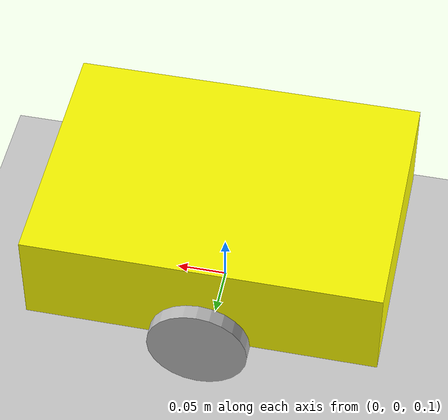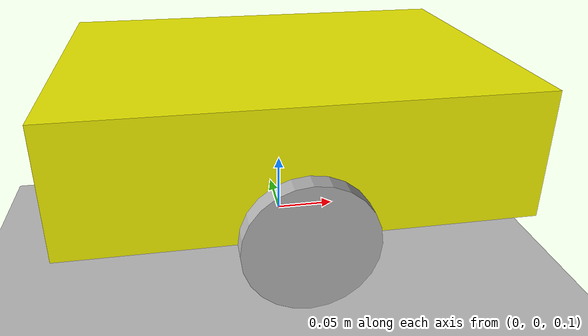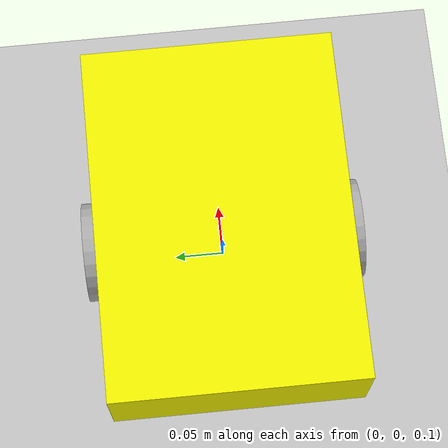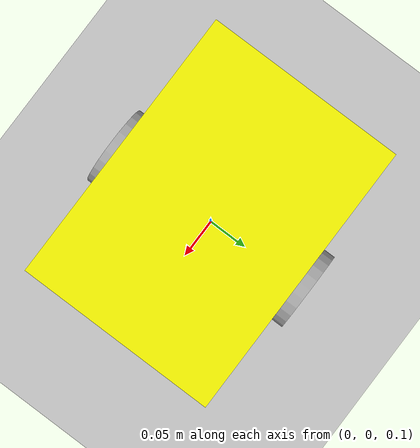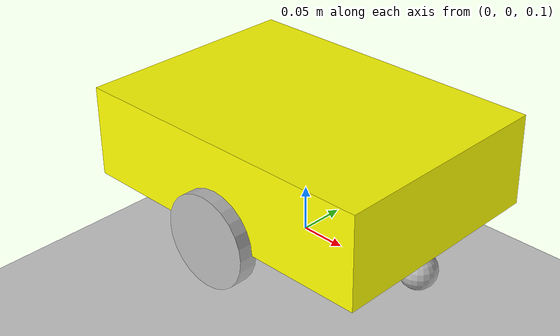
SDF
<?xml version="1.0" ?>
<sdf version="1.10">
  <world name="empty_world">
    <include>
      <uri>https://fuel.gazebosim.org/1.0/openrobotics/models/Ground Plane</uri>
    </include>
    <include>
      <uri>https://fuel.gazebosim.org/1.0/openrobotics/models/Sun</uri>
    </include>

    <include>
      <uri>model://diffbot</uri>
      <name>diffbot</name>
      <pose>0 0 0.1 0 0 0</pose>
    </include>
  </world>
</sdf>

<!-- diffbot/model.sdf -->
<sdf version="1.10">
  <model name="diffbot">
    <static>false</static>

    <!-- Pose inicial -->
    <pose>0 0 0 0 0 0</pose>

    <!-- Base -->
    <link name="base_link">
      <pose>0 0 0.10 0 0 0</pose>
      <inertial>
        <mass>5.0</mass>
        <inertia>
          <ixx>0.10</ixx><iyy>0.10</iyy><izz>0.10</izz>
          <ixy>0</ixy><ixz>0</ixz><iyz>0</iyz>
        </inertia>
      </inertial>

      <collision name="base_collision">
        <geometry>
          <box><size>0.35 0.25 0.10</size></box>
        </geometry>
      </collision>

      <visual name="base_visual">
        <geometry>
          <box><size>0.35 0.25 0.10</size></box>
        </geometry>
        <material>
          <ambient>1 1 0 1</ambient>
          <diffuse>1 1 0 1</diffuse>
        </material>
      </visual>
    </link>

    <!-- Roda esquerra -->
    <link name="left_wheel">
      <pose>0 0.13 0.05 1.57 0 0</pose>
      <inertial>
        <mass>0.5</mass>
        <inertia>
          <ixx>0.001</ixx><iyy>0.001</iyy><izz>0.001</izz>
          <ixy>0</ixy><ixz>0</ixz><iyz>0</iyz>
        </inertia>
      </inertial>
      <collision name="left_wheel_collision">
        <geometry>
          <cylinder><radius>0.05</radius><length>0.02</length></cylinder>
        </geometry>
        <!-- Fricció alta -->
        <surface>
          <friction>
            <ode>
              <mu>2.0</mu><mu2>2.0</mu2>
            </ode>
          </friction>
        </surface>
      </collision>
      <visual name="left_wheel_visual">
        <geometry>
          <cylinder><radius>0.05</radius><length>0.02</length></cylinder>
        </geometry>
      </visual>
    </link>

    <!-- Roda dreta -->
    <link name="right_wheel">
      <pose>0 -0.13 0.05 1.57 0 0</pose>
      <inertial>
        <mass>0.5</mass>
        <inertia>
          <ixx>0.001</ixx><iyy>0.001</iyy><izz>0.001</izz>
          <ixy>0</ixy><ixz>0</ixz><iyz>0</iyz>
        </inertia>
      </inertial>
      <collision name="right_wheel_collision">
        <geometry>
          <cylinder><radius>0.05</radius><length>0.02</length></cylinder>
        </geometry>
        <surface>
          <friction>
            <ode>
              <mu>2.0</mu><mu2>2.0</mu2>
            </ode>
          </friction>
        </surface>
      </collision>
      <visual name="right_wheel_visual">
        <geometry>
          <cylinder><radius>0.05</radius><length>0.02</length></cylinder>
        </geometry>
      </visual>
    </link>

    <!-- Joints rodes -->
    <joint name="left_wheel_joint" type="revolute">
      <parent>base_link</parent>
      <child>left_wheel</child>
      <!-- Eix de rotació (roda gira sobre Y o X segons orientació).
           Com el cilindre per defecte apunta en Z, el fem girar sobre Y per avançar en X. -->
      <axis>
        <xyz>0 0 1</xyz>
        <limit>
          <lower>-1e16</lower><upper>1e16</upper>
          <effort>50</effort><velocity>100</velocity>
        </limit>
      </axis>
    </joint>

    <joint name="right_wheel_joint" type="revolute">
      <parent>base_link</parent>
      <child>right_wheel</child>
      <axis>
        <xyz>0 0 1</xyz>
        <limit>
          <lower>-1e16</lower><upper>1e16</upper>
          <effort>50</effort><velocity>100</velocity>
        </limit>
      </axis>
    </joint>

    <!-- Caster wheel -->
    <link name="caster_front">
      <!-- posa'l una mica davant i baix -->
      <pose>0.15 0 0.02 0 0 0</pose>

      <inertial>
        <mass>0.2</mass>
        <inertia>
          <ixx>1e-4</ixx><iyy>1e-4</iyy><izz>1e-4</izz>
          <ixy>0</ixy><ixz>0</ixz><iyz>0</iyz>
        </inertia>
      </inertial>

      <collision name="caster_collision">
        <geometry>
          <sphere><radius>0.02</radius></sphere>
        </geometry>
        <surface>
          <friction>
            <ode>
              <mu>0.2</mu><mu2>0.2</mu2>
            </ode>
          </friction>
        </surface>
      </collision>

      <visual name="caster_visual">
        <geometry>
          <sphere><radius>0.02</radius></sphere>
        </geometry>
      </visual>
    </link>

    <joint name="caster_front_joint" type="ball">
      <parent>base_link</parent>
      <child>caster_front</child>
    </joint>

    <!-- Plugin DiffDrive (Gazebo Sim) -->
    <plugin name="gz::sim::systems::DiffDrive" filename="gz-sim-diff-drive-system">
      <left_joint>left_wheel_joint</left_joint>
      <right_joint>right_wheel_joint</right_joint>

      <wheel_separation>0.26</wheel_separation>
      <wheel_radius>0.05</wheel_radius>

      <topic>/cmd_vel</topic>
      <odom_topic>/odom</odom_topic>
      <odom_publish_frequency>50</odom_publish_frequency>

      <frame_id>odom</frame_id>
      <child_frame_id>base_link</child_frame_id>
    </plugin>

  </model>
</sdf>
